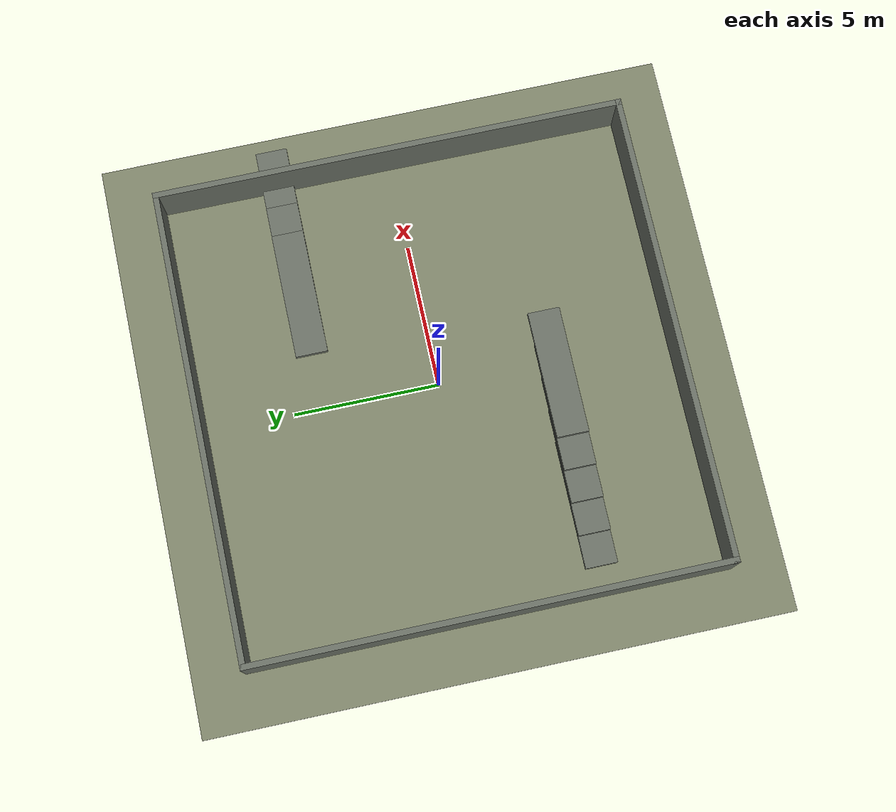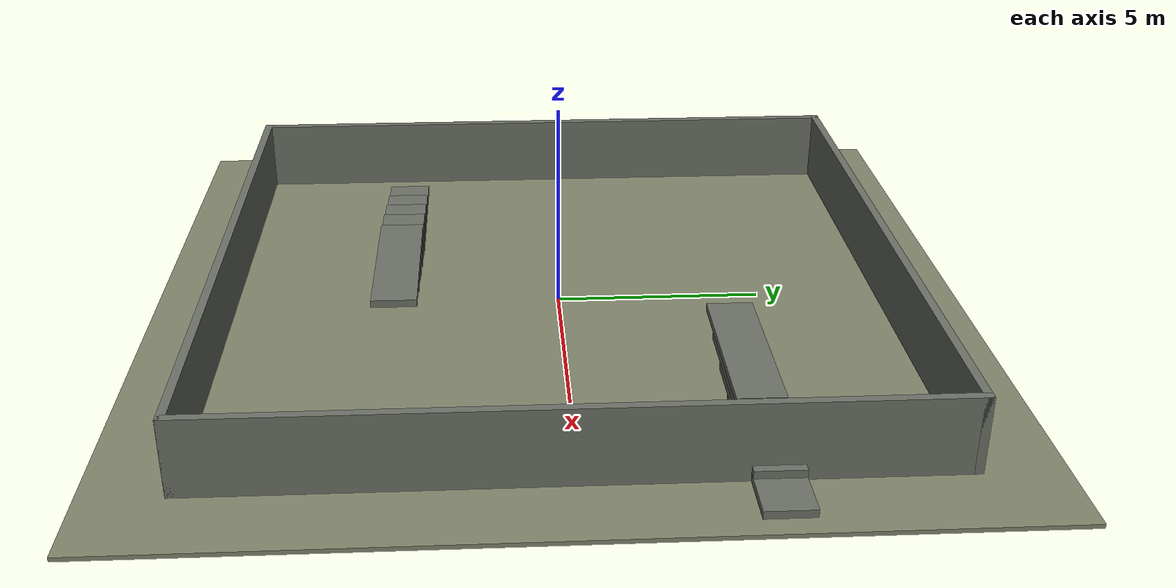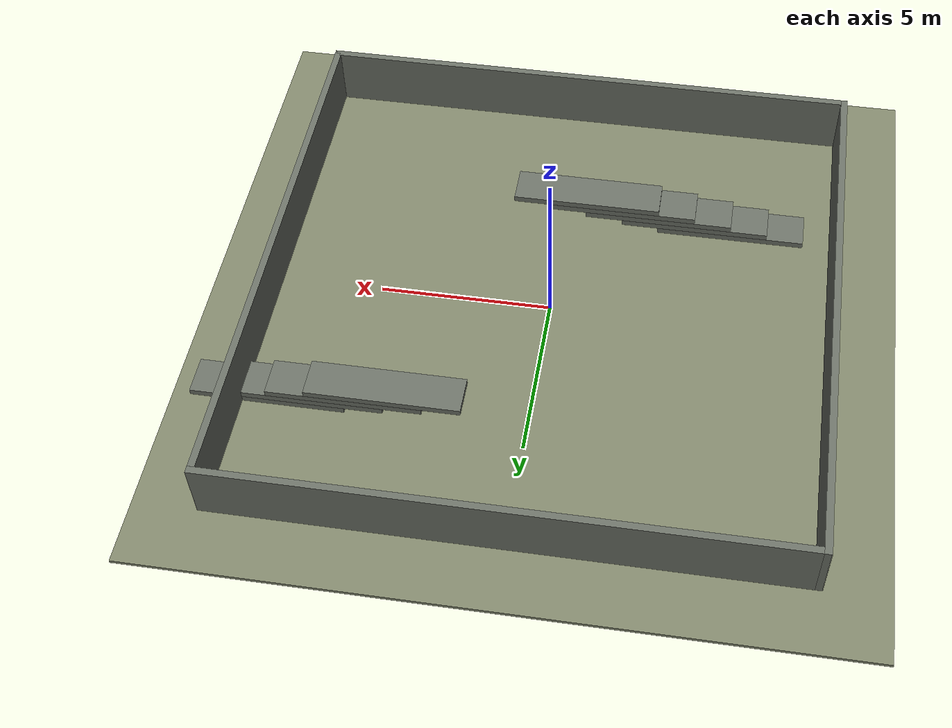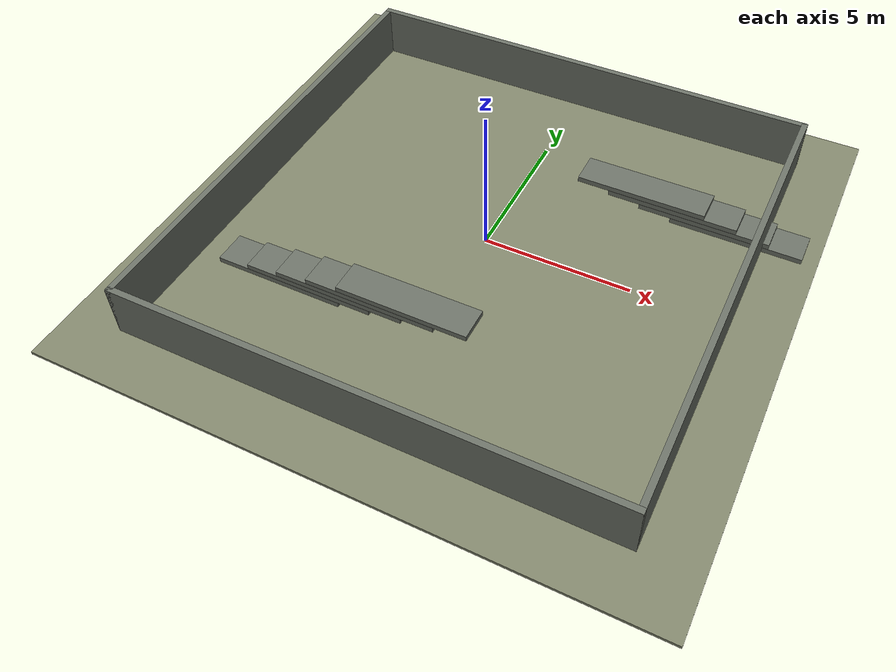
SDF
<?xml version="1.0" ?>
<sdf version="1.7">
  <world name="terrain_stairs">
    <physics type="ode">
      <max_step_size>0.01</max_step_size>
    </physics>

    <light name="sun" type="directional">
      <cast_shadows>true</cast_shadows>
      <pose>0 0 10 0 0 0</pose>
      <diffuse>0.8 0.8 0.8 1</diffuse>
      <specular>0.3 0.3 0.3 1</specular>
      <attenuation>
        <range>1000</range>
        <constant>0.9</constant>
        <linear>0.01</linear>
        <quadratic>0.001</quadratic>
      </attenuation>
      <direction>-0.5 0.3 -1.0</direction>
    </light>

    <model name="ground_plane">
      <static>true</static>
      <pose>0 0 -0.05 0 0 0</pose>
      <link name="link">
        <collision name="collision">
          <geometry>
            <box><size>20.0 20.0 0.1</size></box>
          </geometry>
          <surface>
            <friction>
              <ode><mu>100</mu><mu2>50</mu2></ode>
            </friction>
          </surface>
        </collision>
        <visual name="visual">
          <geometry>
            <box><size>20.0 20.0 0.1</size></box>
          </geometry>
          <material>
            <ambient>0.5 0.52 0.42 1</ambient>
            <diffuse>0.5 0.52 0.42 1</diffuse>
          </material>
        </visual>
      </link>
    </model>

    <model name="platform_00">
      <static>true</static>
      <pose>0.000 -8.100 0.900 0 0 0</pose>
      <link name="link">
        <collision name="collision">
          <geometry>
            <box><size>16.400 0.200 1.800</size></box>
          </geometry>
          <surface>
            <friction>
              <ode><mu>1.0</mu><mu2>1.0</mu2></ode>
            </friction>
          </surface>
        </collision>
        <visual name="visual">
          <geometry>
            <box><size>16.400 0.200 1.800</size></box>
          </geometry>
          <material>
            <ambient>0.42 0.44 0.40 1</ambient>
            <diffuse>0.42 0.44 0.40 1</diffuse>
            <specular>0.1 0.1 0.1 1</specular>
          </material>
        </visual>
      </link>
    </model>

    <model name="platform_01">
      <static>true</static>
      <pose>0.000 8.100 0.900 0 0 0</pose>
      <link name="link">
        <collision name="collision">
          <geometry>
            <box><size>16.400 0.200 1.800</size></box>
          </geometry>
          <surface>
            <friction>
              <ode><mu>1.0</mu><mu2>1.0</mu2></ode>
            </friction>
          </surface>
        </collision>
        <visual name="visual">
          <geometry>
            <box><size>16.400 0.200 1.800</size></box>
          </geometry>
          <material>
            <ambient>0.42 0.44 0.40 1</ambient>
            <diffuse>0.42 0.44 0.40 1</diffuse>
            <specular>0.1 0.1 0.1 1</specular>
          </material>
        </visual>
      </link>
    </model>

    <model name="platform_02">
      <static>true</static>
      <pose>-8.100 0.000 0.900 0 0 0</pose>
      <link name="link">
        <collision name="collision">
          <geometry>
            <box><size>0.200 16.400 1.800</size></box>
          </geometry>
          <surface>
            <friction>
              <ode><mu>1.0</mu><mu2>1.0</mu2></ode>
            </friction>
          </surface>
        </collision>
        <visual name="visual">
          <geometry>
            <box><size>0.200 16.400 1.800</size></box>
          </geometry>
          <material>
            <ambient>0.42 0.44 0.40 1</ambient>
            <diffuse>0.42 0.44 0.40 1</diffuse>
            <specular>0.1 0.1 0.1 1</specular>
          </material>
        </visual>
      </link>
    </model>

    <model name="platform_03">
      <static>true</static>
      <pose>8.100 0.000 0.900 0 0 0</pose>
      <link name="link">
        <collision name="collision">
          <geometry>
            <box><size>0.200 16.400 1.800</size></box>
          </geometry>
          <surface>
            <friction>
              <ode><mu>1.0</mu><mu2>1.0</mu2></ode>
            </friction>
          </surface>
        </collision>
        <visual name="visual">
          <geometry>
            <box><size>0.200 16.400 1.800</size></box>
          </geometry>
          <material>
            <ambient>0.42 0.44 0.40 1</ambient>
            <diffuse>0.42 0.44 0.40 1</diffuse>
            <specular>0.1 0.1 0.1 1</specular>
          </material>
        </visual>
      </link>
    </model>

    <model name="platform_04">
      <static>true</static>
      <pose>-5.000 -4.000 0.090 0 0 0</pose>
      <link name="link">
        <collision name="collision">
          <geometry>
            <box><size>4.400 1.100 0.180</size></box>
          </geometry>
          <surface>
            <friction>
              <ode><mu>1.0</mu><mu2>1.0</mu2></ode>
            </friction>
          </surface>
        </collision>
        <visual name="visual">
          <geometry>
            <box><size>4.400 1.100 0.180</size></box>
          </geometry>
          <material>
            <ambient>0.42 0.44 0.40 1</ambient>
            <diffuse>0.42 0.44 0.40 1</diffuse>
            <specular>0.1 0.1 0.1 1</specular>
          </material>
        </visual>
      </link>
    </model>

    <model name="platform_05">
      <static>true</static>
      <pose>-3.900 -4.000 0.270 0 0 0</pose>
      <link name="link">
        <collision name="collision">
          <geometry>
            <box><size>4.400 1.100 0.180</size></box>
          </geometry>
          <surface>
            <friction>
              <ode><mu>1.0</mu><mu2>1.0</mu2></ode>
            </friction>
          </surface>
        </collision>
        <visual name="visual">
          <geometry>
            <box><size>4.400 1.100 0.180</size></box>
          </geometry>
          <material>
            <ambient>0.42 0.44 0.40 1</ambient>
            <diffuse>0.42 0.44 0.40 1</diffuse>
            <specular>0.1 0.1 0.1 1</specular>
          </material>
        </visual>
      </link>
    </model>

    <model name="platform_06">
      <static>true</static>
      <pose>-2.800 -4.000 0.450 0 0 0</pose>
      <link name="link">
        <collision name="collision">
          <geometry>
            <box><size>4.400 1.100 0.180</size></box>
          </geometry>
          <surface>
            <friction>
              <ode><mu>1.0</mu><mu2>1.0</mu2></ode>
            </friction>
          </surface>
        </collision>
        <visual name="visual">
          <geometry>
            <box><size>4.400 1.100 0.180</size></box>
          </geometry>
          <material>
            <ambient>0.42 0.44 0.40 1</ambient>
            <diffuse>0.42 0.44 0.40 1</diffuse>
            <specular>0.1 0.1 0.1 1</specular>
          </material>
        </visual>
      </link>
    </model>

    <model name="platform_07">
      <static>true</static>
      <pose>-1.700 -4.000 0.630 0 0 0</pose>
      <link name="link">
        <collision name="collision">
          <geometry>
            <box><size>4.400 1.100 0.180</size></box>
          </geometry>
          <surface>
            <friction>
              <ode><mu>1.0</mu><mu2>1.0</mu2></ode>
            </friction>
          </surface>
        </collision>
        <visual name="visual">
          <geometry>
            <box><size>4.400 1.100 0.180</size></box>
          </geometry>
          <material>
            <ambient>0.42 0.44 0.40 1</ambient>
            <diffuse>0.42 0.44 0.40 1</diffuse>
            <specular>0.1 0.1 0.1 1</specular>
          </material>
        </visual>
      </link>
    </model>

    <model name="platform_08">
      <static>true</static>
      <pose>-0.600 -4.000 0.810 0 0 0</pose>
      <link name="link">
        <collision name="collision">
          <geometry>
            <box><size>4.400 1.100 0.180</size></box>
          </geometry>
          <surface>
            <friction>
              <ode><mu>1.0</mu><mu2>1.0</mu2></ode>
            </friction>
          </surface>
        </collision>
        <visual name="visual">
          <geometry>
            <box><size>4.400 1.100 0.180</size></box>
          </geometry>
          <material>
            <ambient>0.42 0.44 0.40 1</ambient>
            <diffuse>0.42 0.44 0.40 1</diffuse>
            <specular>0.1 0.1 0.1 1</specular>
          </material>
        </visual>
      </link>
    </model>

    <model name="platform_09">
      <static>true</static>
      <pose>4.000 4.000 0.630 0 0 0</pose>
      <link name="link">
        <collision name="collision">
          <geometry>
            <box><size>4.400 1.100 0.180</size></box>
          </geometry>
          <surface>
            <friction>
              <ode><mu>1.0</mu><mu2>1.0</mu2></ode>
            </friction>
          </surface>
        </collision>
        <visual name="visual">
          <geometry>
            <box><size>4.400 1.100 0.180</size></box>
          </geometry>
          <material>
            <ambient>0.42 0.44 0.40 1</ambient>
            <diffuse>0.42 0.44 0.40 1</diffuse>
            <specular>0.1 0.1 0.1 1</specular>
          </material>
        </visual>
      </link>
    </model>

    <model name="platform_10">
      <static>true</static>
      <pose>5.100 4.000 0.450 0 0 0</pose>
      <link name="link">
        <collision name="collision">
          <geometry>
            <box><size>4.400 1.100 0.180</size></box>
          </geometry>
          <surface>
            <friction>
              <ode><mu>1.0</mu><mu2>1.0</mu2></ode>
            </friction>
          </surface>
        </collision>
        <visual name="visual">
          <geometry>
            <box><size>4.400 1.100 0.180</size></box>
          </geometry>
          <material>
            <ambient>0.42 0.44 0.40 1</ambient>
            <diffuse>0.42 0.44 0.40 1</diffuse>
            <specular>0.1 0.1 0.1 1</specular>
          </material>
        </visual>
      </link>
    </model>

    <model name="platform_11">
      <static>true</static>
      <pose>6.200 4.000 0.270 0 0 0</pose>
      <link name="link">
        <collision name="collision">
          <geometry>
            <box><size>4.400 1.100 0.180</size></box>
          </geometry>
          <surface>
            <friction>
              <ode><mu>1.0</mu><mu2>1.0</mu2></ode>
            </friction>
          </surface>
        </collision>
        <visual name="visual">
          <geometry>
            <box><size>4.400 1.100 0.180</size></box>
          </geometry>
          <material>
            <ambient>0.42 0.44 0.40 1</ambient>
            <diffuse>0.42 0.44 0.40 1</diffuse>
            <specular>0.1 0.1 0.1 1</specular>
          </material>
        </visual>
      </link>
    </model>

    <model name="platform_12">
      <static>true</static>
      <pose>7.300 4.000 0.090 0 0 0</pose>
      <link name="link">
        <collision name="collision">
          <geometry>
            <box><size>4.400 1.100 0.180</size></box>
          </geometry>
          <surface>
            <friction>
              <ode><mu>1.0</mu><mu2>1.0</mu2></ode>
            </friction>
          </surface>
        </collision>
        <visual name="visual">
          <geometry>
            <box><size>4.400 1.100 0.180</size></box>
          </geometry>
          <material>
            <ambient>0.42 0.44 0.40 1</ambient>
            <diffuse>0.42 0.44 0.40 1</diffuse>
            <specular>0.1 0.1 0.1 1</specular>
          </material>
        </visual>
      </link>
    </model>

  </world>
</sdf>
